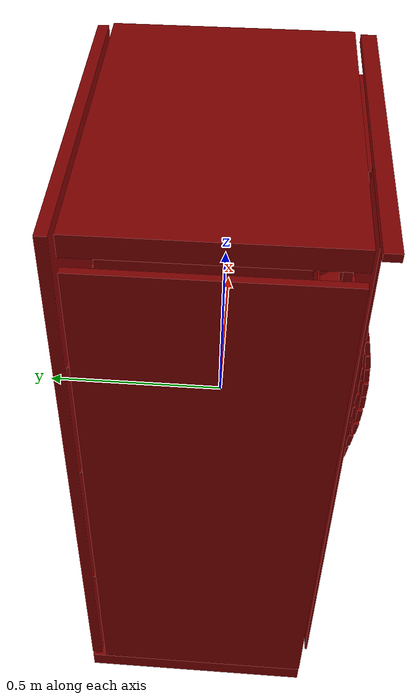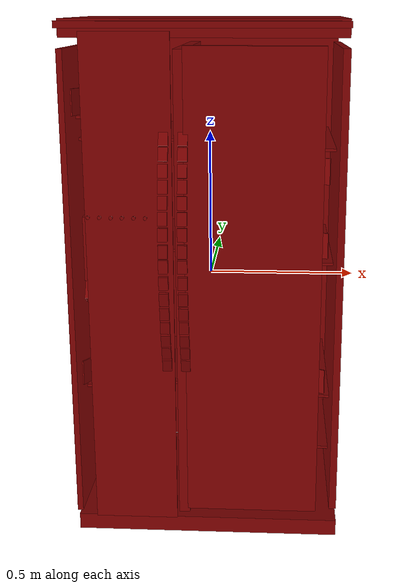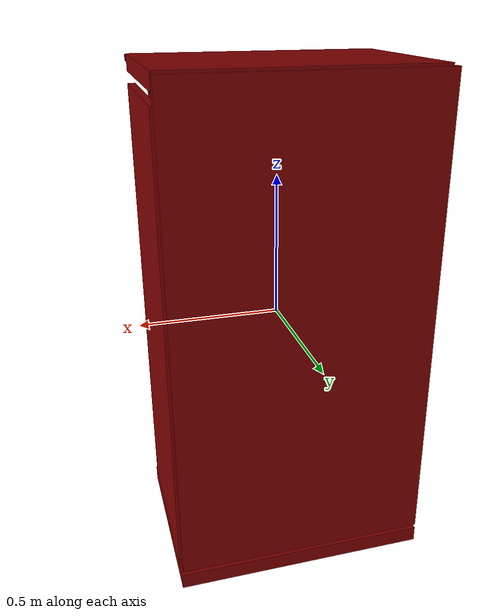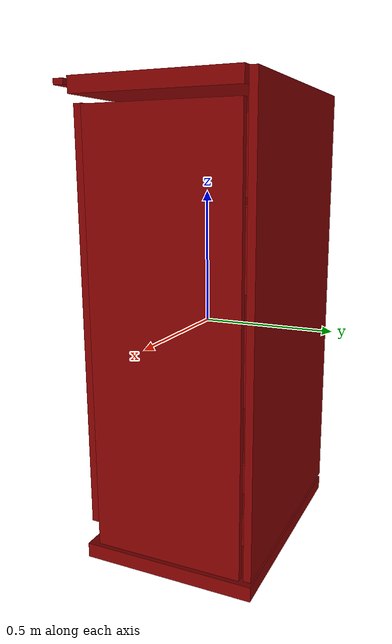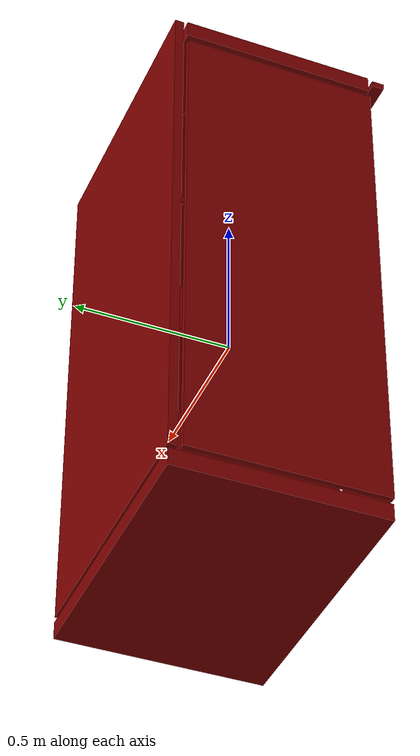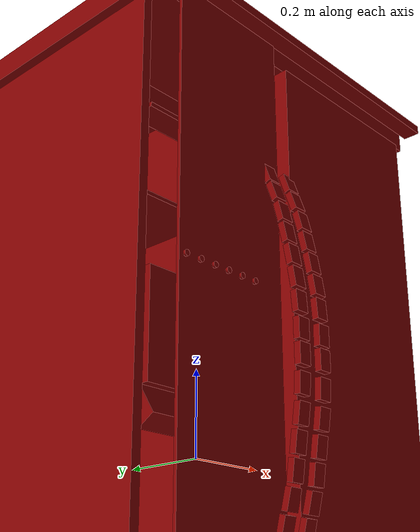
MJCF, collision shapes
<mujoco model="model">
  <compiler angle="radian"/>
  <asset>
    <mesh file="visuals/Body001.obj" name="Body001_vis"/>
    <mesh file="visuals/Body001_Clear.obj" name="Body001_Clear_vis"/>
    <mesh file="visuals/Button001.obj" name="Button001_vis"/>
    <mesh file="visuals/Button002.obj" name="Button002_vis"/>
    <mesh file="visuals/Button003.obj" name="Button003_vis"/>
    <mesh file="visuals/Button004.obj" name="Button004_vis"/>
    <mesh file="visuals/Button005.obj" name="Button005_vis"/>
    <mesh file="visuals/Button006.obj" name="Button006_vis"/>
    <mesh file="visuals/Door001.obj" name="Door001_vis"/>
    <mesh file="visuals/Door001_Clear.obj" name="Door001_Clear_vis"/>
    <mesh file="visuals/Door002.obj" name="Door002_vis"/>
    <mesh file="visuals/Door002_Clear.obj" name="Door002_Clear_vis"/>
    <mesh file="visuals/Drawer001.obj" name="Drawer001_vis"/>
    <mesh file="visuals/Drawer002.obj" name="Drawer002_vis"/>
    <texture file="visuals/T_BC001.png" name="Body001_material" type="2d"/>
    <material name="Body001_material" rgba="1 1 1 1.0" texture="Body001_material" shininess="0.4472135901451111" specular="0.8"/>
    <texture file="visuals/T_BC001.png" name="Body001_Clear_material" type="2d"/>
    <material name="Body001_Clear_material" rgba="1 1 1 0.10000000149011612" texture="Body001_Clear_material" shininess="0.4472135901451111" specular="0.8"/>
    <texture file="visuals/T_BC001.png" name="Door001_material" type="2d"/>
    <material name="Door001_material" rgba="1 1 1 1.0" texture="Door001_material" shininess="0.4472135901451111" specular="0.8"/>
    <texture file="visuals/T_BC001.png" name="Button001_material" type="2d"/>
    <material name="Button001_material" rgba="1 1 1 1.0" texture="Button001_material" shininess="0.4472135901451111" specular="0.8"/>
    <texture file="visuals/T_BC001.png" name="Button002_material" type="2d"/>
    <material name="Button002_material" rgba="1 1 1 1.0" texture="Button002_material" shininess="0.4472135901451111" specular="0.8"/>
    <texture file="visuals/T_BC001.png" name="Button003_material" type="2d"/>
    <material name="Button003_material" rgba="1 1 1 1.0" texture="Button003_material" shininess="0.4472135901451111" specular="0.8"/>
    <texture file="visuals/T_BC001.png" name="Button004_material" type="2d"/>
    <material name="Button004_material" rgba="1 1 1 1.0" texture="Button004_material" shininess="0.4472135901451111" specular="0.8"/>
    <texture file="visuals/T_BC001.png" name="Button005_material" type="2d"/>
    <material name="Button005_material" rgba="1 1 1 1.0" texture="Button005_material" shininess="0.4472135901451111" specular="0.8"/>
    <texture file="visuals/T_BC001.png" name="Button006_material" type="2d"/>
    <material name="Button006_material" rgba="1 1 1 1.0" texture="Button006_material" shininess="0.4472135901451111" specular="0.8"/>
    <texture file="visuals/T_BC001.png" name="Door001_Clear_material" type="2d"/>
    <material name="Door001_Clear_material" rgba="1 1 1 0.10000000149011612" texture="Door001_Clear_material" shininess="0.4472135901451111" specular="0.8"/>
    <texture file="visuals/T_BC001.png" name="Door002_material" type="2d"/>
    <material name="Door002_material" rgba="1 1 1 1.0" texture="Door002_material" shininess="0.4472135901451111" specular="0.8"/>
    <texture file="visuals/T_BC001.png" name="Door002_Clear_material" type="2d"/>
    <material name="Door002_Clear_material" rgba="1 1 1 0.10000000149011612" texture="Door002_Clear_material" shininess="0.4472135901451111" specular="0.8"/>
    <texture file="visuals/T_BC001.png" name="Drawer001_material" type="2d"/>
    <material name="Drawer001_material" rgba="1 1 1 1.0" texture="Drawer001_material" shininess="0.4472135901451111" specular="0.8"/>
    <texture file="visuals/T_BC001.png" name="Drawer002_material" type="2d"/>
    <material name="Drawer002_material" rgba="1 1 1 1.0" texture="Drawer002_material" shininess="0.4472135901451111" specular="0.8"/>
  </asset>
  <default>
    <default class="visual">
      <geom conaffinity="0" contype="0" group="1" type="mesh"/>
    </default>
    <default class="collision">
      <geom group="0" rgba="0.5 0 0 0.5"/>
    </default>
    <default class="spawn">
      <geom group="0" rgba="1 1 1 0.5" contype="0" conaffinity="0"/>
      <site group="0" rgba="1 1 1 0.5"/>
    </default>
    <default class="region">
      <geom group="1" conaffinity="0" contype="0" rgba="0 1 0 0"/>
    </default>
  </default>
  <worldbody>
    <body>
      <body name="object">
        <geom mesh="Body001_vis" type="mesh" solimp="0.998 0.998 0.001" solref="0.001 1" density="100" friction="0.95 0.3 0.1" class="visual" material="Body001_material"/>
        <geom class="collision" type="box" pos="0.000502 0.013715 0.850537" size="0.44800040125846863 0.31068915128707886 0.028410857543349266" quat="1.0 0.0 0.0 0.0"/>
        <geom class="collision" type="box" pos="-0.445311 0.013715 -0.005165" size="0.009599066339433193 0.310689240694046 0.7937540411949158" quat="1.0 0.0 0.0 0.0"/>
        <geom class="collision" type="box" pos="0.000502 0.351787 0.036774" size="0.44800040125846863 0.014299582690000534 0.8356931805610657" quat="1.0 0.0 0.0 0.0"/>
        <geom class="collision" type="box" pos="0.001952 0.034234 -0.842715" size="0.4502994418144226 0.3312082588672638 0.028066061437129974" quat="1.0 0.0 0.0 0.0"/>
        <geom class="collision" type="box" pos="0.442520 0.040745 -0.005165" size="0.01248040609061718 0.2836594581604004 0.7937540411949158" quat="1.0 0.0 0.0 0.0"/>
        <geom class="collision" type="box" pos="-0.076691 0.017630 -0.005165" size="0.01868603192269802 0.30677443742752075 0.7937540411949158" quat="1.0 0.0 0.0 0.0"/>
        <geom class="collision" type="box" pos="0.000502 -0.332219 0.862164" size="0.44800040125846863 0.01981038600206375 0.010303191840648651" quat="1.0 0.0 0.0 0.0"/>
        <body name="Body001_Clear">
          <geom mesh="Body001_Clear_vis" type="mesh" solimp="0.998 0.998 0.001" solref="0.001 1" density="100" friction="0.95 0.3 0.1" class="visual" material="Body001_Clear_material"/>
          <geom class="collision" type="box" pos="0.185762 0.059200 -0.377109" size="0.23391325771808624 0.2834528386592865 0.004587478470057249" quat="1.0 0.0 0.0 0.0"/>
          <geom class="collision" type="box" pos="0.185762 0.059200 -0.570086" size="0.23391325771808624 0.2834528386592865 0.004587497562170029" quat="1.0 0.0 0.0 0.0"/>
          <geom class="collision" type="box" pos="-0.255566 0.105609 0.488321" size="0.17424075305461884 0.23704399168491364 0.004587478470057249" quat="1.0 0.0 0.0 0.0"/>
          <geom class="collision" type="box" pos="-0.255566 0.105609 0.110322" size="0.17424075305461884 0.23704399168491364 0.004587497562170029" quat="1.0 0.0 0.0 0.0"/>
          <geom class="collision" type="box" pos="-0.255566 0.107759 -0.378989" size="0.17424075305461884 0.23489367961883545 0.004587478470057249" quat="1.0 0.0 0.0 0.0"/>
          <geom class="collision" type="box" pos="0.185762 0.056311 0.472643" size="0.23391325771808624 0.286342054605484 0.004587478470057249" quat="1.0 0.0 0.0 0.0"/>
          <geom class="collision" type="box" pos="0.185762 0.056311 0.095022" size="0.23391325771808624 0.286342054605484 0.004587478470057249" quat="1.0 0.0 0.0 0.0"/>
        </body>
        <body name="Door001">
          <joint axis="0.0 0.0 -1.0" pos="-0.433079 -0.312615 0.141476" limited="true" name="Door001_joint" range="0.0 1.5707963267948966" type="hinge" damping="1" frictionloss="1" armature=".01" stiffness="0.05"/>
          <geom mesh="Door001_vis" type="mesh" solimp="0.998 0.998 0.001" solref="0.001 1" density="100" friction="0.95 0.3 0.1" class="visual" material="Door001_material"/>
          <geom class="collision" type="box" pos="-0.273921 -0.232126 0.146294" size="0.1261339783668518 0.039346158504486084 0.10778778046369553" quat="1.0 0.0 0.0 0.0"/>
          <geom class="collision" type="box" pos="-0.239680 -0.319809 0.019687" size="0.14074762165546417 0.0033345655538141727 0.8226894736289978" quat="1.0 0.0 0.0 0.0"/>
          <geom class="collision" type="box" pos="-0.123924 -0.324863 -0.231913" size="0.015232296660542488 0.006920435465872288 0.02163306623697281" quat="0.9920744895935059 0.12565097212791443 0.0 0.0"/>
          <geom class="collision" type="box" pos="-0.123924 -0.339172 -0.183623" size="0.015232296660542488 0.006920435465872288 0.02163306623697281" quat="0.9920744895935059 0.12565097212791443 0.0 0.0"/>
          <geom class="collision" type="box" pos="-0.123924 -0.353735 -0.136099" size="0.015232296660542488 0.006920435465872288 0.02163306623697281" quat="0.9920744895935059 0.12565097212791443 0.0 0.0"/>
          <geom class="collision" type="box" pos="-0.123924 -0.365233 -0.086915" size="0.015232296660542488 0.006920435465872288 0.02163306623697281" quat="0.9975057244300842 0.07058577239513397 0.0 0.0"/>
          <geom class="collision" type="box" pos="-0.123924 -0.373750 -0.037092" size="0.015232296660542488 0.006920435465872288 0.02163306623697281" quat="0.9975057244300842 0.07058577239513397 0.0 0.0"/>
          <geom class="collision" type="box" pos="-0.123924 -0.382267 0.013796" size="0.015232296660542488 0.006920435465872288 0.02163306623697281" quat="0.9975057244300842 0.07058577239513397 0.0 0.0"/>
          <geom class="collision" type="box" pos="-0.123924 -0.386738 0.068730" size="0.015232296660542488 0.006920434534549713 0.02163306623697281" quat="0.999504566192627 0.03147508203983307 0.0 0.0"/>
          <geom class="collision" type="box" pos="-0.123924 -0.389506 0.124089" size="0.015232296660542488 0.007034887094050646 0.021669097244739532" quat="1.0 0.0 0.0 0.0"/>
          <geom class="collision" type="box" pos="-0.123924 -0.389080 0.173060" size="0.015232296660542488 0.007034905254840851 0.021669169887900352" quat="1.0 0.0 0.0 0.0"/>
          <geom class="collision" type="box" pos="-0.123924 -0.386419 0.226734" size="0.015232296660542488 0.006920435465872288 0.02163306623697281" quat="0.9993606805801392 -0.0357518270611763 -0.0 0.0"/>
          <geom class="collision" type="box" pos="-0.123924 -0.382373 0.276344" size="0.015232296660542488 0.006920435465872288 0.02163306623697281" quat="0.9970585703849792 -0.07664324343204498 -0.0 0.0"/>
          <geom class="collision" type="box" pos="-0.123924 -0.374282 0.325316" size="0.015232296660542488 0.006920435465872288 0.02163306623697281" quat="0.9961068034172058 -0.08815453946590424 -0.0 0.0"/>
          <geom class="collision" type="box" pos="-0.123924 -0.364062 0.374372" size="0.015232296660542488 0.006920434534549713 0.02163306623697281" quat="0.9945374131202698 -0.10438086837530136 -0.0 0.0"/>
          <geom class="collision" type="box" pos="-0.123924 -0.354097 0.422151" size="0.015232296660542488 0.006920435465872288 0.02163306623697281" quat="0.9921504855155945 -0.12504985928535461 -0.0 0.0"/>
          <geom class="collision" type="box" pos="-0.123924 -0.339090 0.471549" size="0.015232296660542488 0.006920434534549713 0.02163306623697281" quat="0.9860491752624512 -0.16645437479019165 -0.0 0.0"/>
          <geom class="collision" type="box" pos="-0.123924 -0.323285 0.517028" size="0.015232296660542488 0.006920434534549713 0.02163306623697281" quat="0.9860491752624512 -0.16645437479019165 -0.0 0.0"/>
          <geom class="collision" type="box" pos="-0.273921 -0.247035 0.006434" size="0.1261339783668518 0.021196728572249413 0.040684595704078674" quat="0.9596711993217468 -0.28112488985061646 6.242226510147307e-17 1.817213670379881e-24"/>
          <body name="Button001">
            <joint axis="0.0 1.0 0.0" pos="-0.408712 -0.288247 0.141476" limited="true" name="Button001_joint" range="0.0 0.002" type="slide" damping="1" frictionloss="1" armature=".01" stiffness="0.05"/>
            <geom mesh="Button001_vis" type="mesh" solimp="0.998 0.998 0.001" solref="0.001 1" density="100" friction="0.95 0.3 0.1" class="visual" material="Button001_material"/>
            <geom class="collision" type="cylinder" pos="-0.369257 -0.330408 0.266233" size="0.006131454836577177 0.0025956109166145325" quat="0.7071068286895752 -0.7071067690849304 -0.0 0.0"/>
          </body>
          <body name="Button002">
            <joint axis="0.0 1.0 0.0" pos="-0.408712 -0.288247 0.141476" limited="true" name="Button002_joint" range="0.0 0.002" type="slide" damping="1" frictionloss="1" armature=".01" stiffness="0.05"/>
            <geom mesh="Button002_vis" type="mesh" solimp="0.998 0.998 0.001" solref="0.001 1" density="100" friction="0.95 0.3 0.1" class="visual" material="Button002_material"/>
            <geom class="collision" type="cylinder" pos="-0.332350 -0.330408 0.266233" size="0.006131454836577177 0.0025956109166145325" quat="0.7071068286895752 -0.7071067690849304 -0.0 0.0"/>
          </body>
          <body name="Button003">
            <joint axis="0.0 1.0 0.0" pos="-0.408712 -0.288247 0.141476" limited="true" name="Button003_joint" range="0.0 0.002" type="slide" damping="1" frictionloss="1" armature=".01" stiffness="0.05"/>
            <geom mesh="Button003_vis" type="mesh" solimp="0.998 0.998 0.001" solref="0.001 1" density="100" friction="0.95 0.3 0.1" class="visual" material="Button003_material"/>
            <geom class="collision" type="cylinder" pos="-0.295628 -0.330930 0.266233" size="0.006131454836577177 0.0025956109166145325" quat="0.7071068286895752 -0.7071067690849304 -0.0 0.0"/>
          </body>
          <body name="Button004">
            <joint axis="0.0 1.0 0.0" pos="-0.408712 -0.288247 0.141476" limited="true" name="Button004_joint" range="0.0 0.002" type="slide" damping="1" frictionloss="1" armature=".01" stiffness="0.05"/>
            <geom mesh="Button004_vis" type="mesh" solimp="0.998 0.998 0.001" solref="0.001 1" density="100" friction="0.95 0.3 0.1" class="visual" material="Button004_material"/>
            <geom class="collision" type="cylinder" pos="-0.259486 -0.330930 0.266233" size="0.006131454836577177 0.0025956109166145325" quat="0.7071068286895752 -0.7071067690849304 -0.0 0.0"/>
          </body>
          <body name="Button005">
            <joint axis="0.0 1.0 0.0" pos="-0.408712 -0.288247 0.141476" limited="true" name="Button005_joint" range="0.0 0.002" type="slide" damping="1" frictionloss="1" armature=".01" stiffness="0.05"/>
            <geom mesh="Button005_vis" type="mesh" solimp="0.998 0.998 0.001" solref="0.001 1" density="100" friction="0.95 0.3 0.1" class="visual" material="Button005_material"/>
            <geom class="collision" type="cylinder" pos="-0.222471 -0.331381 0.266233" size="0.006131454836577177 0.0025956109166145325" quat="0.7071068286895752 -0.7071067690849304 -0.0 0.0"/>
          </body>
          <body name="Button006">
            <joint axis="0.0 1.0 0.0" pos="-0.408712 -0.288247 0.141476" limited="true" name="Button006_joint" range="0.0 0.002" type="slide" damping="1" frictionloss="1" armature=".01" stiffness="0.05"/>
            <geom mesh="Button006_vis" type="mesh" solimp="0.998 0.998 0.001" solref="0.001 1" density="100" friction="0.95 0.3 0.1" class="visual" material="Button006_material"/>
            <geom class="collision" type="cylinder" pos="-0.185637 -0.331381 0.266233" size="0.006131454836577177 0.0025956109166145325" quat="0.7071068286895752 -0.7071067690849304 -0.0 0.0"/>
          </body>
          <body name="Door001_Clear">
            <geom mesh="Door001_Clear_vis" type="mesh" solimp="0.998 0.998 0.001" solref="0.001 1" density="100" friction="0.95 0.3 0.1" class="visual" material="Door001_Clear_material"/>
            <geom class="collision" type="box" pos="-0.282574 -0.213238 0.623133" size="0.10331191122531891 0.0024915917310863733 0.04236834496259689" quat="1.0 0.0 0.0 0.0"/>
            <geom class="collision" type="box" pos="-0.157737 -0.239395 0.623133" size="0.03484678640961647 0.0024915917310863733 0.04236834496259689" quat="0.8852932453155518 0.0 -0.0 -0.4650331437587738"/>
            <geom class="collision" type="box" pos="-0.402215 -0.240145 0.623133" size="0.03484678640961647 0.002491591963917017 0.04236834496259689" quat="0.8684726357460022 0.0 0.0 0.49573707580566406"/>
            <geom class="collision" type="box" pos="-0.279660 -0.243396 0.577383" size="0.12704499065876007 0.027977311983704567 0.004774631932377815" quat="1.0 0.0 0.0 0.0"/>
            <geom class="collision" type="box" pos="-0.282574 -0.213238 -0.290219" size="0.10331191122531891 0.0024915917310863733 0.04236834496259689" quat="1.0 0.0 0.0 0.0"/>
            <geom class="collision" type="box" pos="-0.157737 -0.239395 -0.290219" size="0.03484678640961647 0.0024915917310863733 0.04236834496259689" quat="0.8852932453155518 0.0 -0.0 -0.4650331437587738"/>
            <geom class="collision" type="box" pos="-0.402215 -0.240145 -0.290219" size="0.03484678640961647 0.002491591963917017 0.04236834496259689" quat="0.8684726357460022 0.0 0.0 0.49573707580566406"/>
            <geom class="collision" type="box" pos="-0.279660 -0.243396 -0.335969" size="0.12704499065876007 0.027977311983704567 0.004774631932377815" quat="1.0 0.0 0.0 0.0"/>
          </body>
        </body>
        <body name="Door002">
          <joint axis="0.0 0.0 1.0" pos="0.431711 -0.316815 -0.032579" limited="true" name="Door002_joint" range="0.0 1.5707963267948966" type="hinge" damping="1" frictionloss="1" armature=".01" stiffness="0.05"/>
          <geom mesh="Door002_vis" type="mesh" solimp="0.998 0.998 0.001" solref="0.001 1" density="100" friction="0.95 0.3 0.1" class="visual" material="Door002_material"/>
          <geom class="collision" type="box" pos="-0.062497 -0.323285 0.517028" size="0.015232296660542488 0.006920434534549713 0.02163306623697281" quat="0.9860491752624512 -0.16645437479019165 -0.0 0.0"/>
          <geom class="collision" type="box" pos="-0.062497 -0.339090 0.471549" size="0.015232296660542488 0.006920434534549713 0.02163306623697281" quat="0.9860491752624512 -0.16645437479019165 -0.0 0.0"/>
          <geom class="collision" type="box" pos="-0.062497 -0.354097 0.422151" size="0.015232296660542488 0.006920435465872288 0.02163306623697281" quat="0.9921504855155945 -0.12504985928535461 -0.0 0.0"/>
          <geom class="collision" type="box" pos="-0.062497 -0.364062 0.374372" size="0.015232296660542488 0.006920434534549713 0.02163306623697281" quat="0.9945374131202698 -0.10438086837530136 -0.0 0.0"/>
          <geom class="collision" type="box" pos="-0.062497 -0.374282 0.325316" size="0.015232296660542488 0.006920435465872288 0.02163306623697281" quat="0.9961068034172058 -0.08815453946590424 -0.0 0.0"/>
          <geom class="collision" type="box" pos="-0.062497 -0.382373 0.276344" size="0.015232296660542488 0.006920435465872288 0.02163306623697281" quat="0.9970585703849792 -0.07664324343204498 -0.0 0.0"/>
          <geom class="collision" type="box" pos="-0.062497 -0.386419 0.226734" size="0.015232296660542488 0.006920435465872288 0.02163306623697281" quat="0.9993606805801392 -0.0357518270611763 -0.0 0.0"/>
          <geom class="collision" type="box" pos="-0.062497 -0.389080 0.173060" size="0.015232296660542488 0.007034923415631056 0.021669242531061172" quat="1.0 0.0 0.0 0.0"/>
          <geom class="collision" type="box" pos="-0.062497 -0.389506 0.124089" size="0.015232296660542488 0.007034942042082548 0.021669315174221992" quat="1.0 0.0 0.0 0.0"/>
          <geom class="collision" type="box" pos="-0.062497 -0.386738 0.068730" size="0.015232296660542488 0.006920434534549713 0.02163306623697281" quat="0.999504566192627 0.03147508203983307 0.0 0.0"/>
          <geom class="collision" type="box" pos="-0.062497 -0.382267 0.013796" size="0.015232296660542488 0.006920435465872288 0.02163306623697281" quat="0.9975057244300842 0.07058577239513397 0.0 0.0"/>
          <geom class="collision" type="box" pos="-0.062497 -0.373750 -0.037092" size="0.015232296660542488 0.006920435465872288 0.02163306623697281" quat="0.9975057244300842 0.07058577239513397 0.0 0.0"/>
          <geom class="collision" type="box" pos="-0.062497 -0.365233 -0.086915" size="0.015232296660542488 0.006920435465872288 0.02163306623697281" quat="0.9975057244300842 0.07058577239513397 0.0 0.0"/>
          <geom class="collision" type="box" pos="-0.062497 -0.353735 -0.136099" size="0.015232296660542488 0.006920435465872288 0.02163306623697281" quat="0.9920744895935059 0.12565097212791443 0.0 0.0"/>
          <geom class="collision" type="box" pos="-0.062497 -0.339172 -0.183623" size="0.015232296660542488 0.006920435465872288 0.02163306623697281" quat="0.9920744895935059 0.12565097212791443 0.0 0.0"/>
          <geom class="collision" type="box" pos="-0.062497 -0.324863 -0.231913" size="0.015232296660542488 0.006920435465872288 0.02163306623697281" quat="0.9920744895935059 0.12565097212791443 0.0 0.0"/>
          <geom class="collision" type="box" pos="0.158558 -0.307578 0.018079" size="0.22027823328971863 0.018054431304335594 0.7817465662956238" quat="1.0 0.0 0.0 0.0"/>
          <body name="Door002_Clear">
            <geom mesh="Door002_Clear_vis" type="mesh" solimp="0.998 0.998 0.001" solref="0.001 1" density="100" friction="0.95 0.3 0.1" class="visual" material="Door002_Clear_material"/>
            <geom class="collision" type="box" pos="0.175011 -0.226350 -0.312056" size="0.1655995100736618 0.0024915917310863733 0.04236834496259689" quat="1.0 0.0 0.0 0.0"/>
            <geom class="collision" type="box" pos="0.368759 -0.239249 -0.312056" size="0.03484678640961647 0.0024915917310863733 0.04236834496259689" quat="0.9744662046432495 0.0 -0.0 -0.22453421354293823"/>
            <geom class="collision" type="box" pos="-0.024031 -0.244880 -0.312056" size="0.03484678640961647 0.0024915917310863733 0.04236834496259689" quat="0.9524669051170349 0.0 0.0 0.30464211106300354"/>
            <geom class="collision" type="box" pos="0.175011 -0.236840 -0.357806" size="0.20364147424697876 0.015007716603577137 0.004774631932377815" quat="1.0 0.0 0.0 0.0"/>
            <geom class="collision" type="box" pos="0.175011 -0.226350 0.163001" size="0.1655995100736618 0.0024915917310863733 0.04236834496259689" quat="1.0 0.0 0.0 0.0"/>
            <geom class="collision" type="box" pos="0.368759 -0.239249 0.163001" size="0.03484678640961647 0.0024915917310863733 0.04236834496259689" quat="0.9744662046432495 0.0 -0.0 -0.22453421354293823"/>
            <geom class="collision" type="box" pos="-0.024031 -0.244880 0.163001" size="0.03484678640961647 0.0024915917310863733 0.04236834496259689" quat="0.9524669051170349 0.0 0.0 0.30464211106300354"/>
            <geom class="collision" type="box" pos="0.175011 -0.236840 0.117251" size="0.20364147424697876 0.015007716603577137 0.004774631932377815" quat="1.0 0.0 0.0 0.0"/>
            <geom class="collision" type="box" pos="0.175011 -0.226350 0.407431" size="0.1655995100736618 0.0024915917310863733 0.04236834496259689" quat="1.0 0.0 0.0 0.0"/>
            <geom class="collision" type="box" pos="0.368759 -0.239249 0.407431" size="0.03484678640961647 0.0024915917310863733 0.04236834496259689" quat="0.9744662046432495 0.0 -0.0 -0.22453421354293823"/>
            <geom class="collision" type="box" pos="-0.024031 -0.244880 0.407431" size="0.03484678640961647 0.0024915917310863733 0.04236834496259689" quat="0.9524669051170349 0.0 0.0 0.30464211106300354"/>
            <geom class="collision" type="box" pos="0.175011 -0.236840 0.361681" size="0.20364147424697876 0.015007716603577137 0.004774631932377815" quat="1.0 0.0 0.0 0.0"/>
          </body>
        </body>
        <body name="Drawer001">
          <joint axis="0.0 -1.0 0.0" pos="0.184320 -0.006545 -0.450612" limited="true" name="Drawer001_joint" range="0.0 0.4" type="slide" damping="1" frictionloss="1" armature=".01" stiffness="0.05"/>
          <geom mesh="Drawer001_vis" type="mesh" solimp="0.998 0.998 0.001" solref="0.001 1" density="100" friction="0.95 0.3 0.1" class="visual" material="Drawer001_material"/>
          <geom class="collision" type="box" pos="0.127212 0.047793 -0.552458" size="0.16899418830871582 0.25132739543914795 0.005459532607346773" quat="1.0 0.0 0.0 0.0"/>
          <geom class="collision" type="box" pos="-0.038125 0.047793 -0.474480" size="0.003519356483593583 0.25132739543914795 0.08169250935316086" quat="1.0 0.0 0.0 0.0"/>
          <geom class="collision" type="box" pos="0.292687 0.047793 -0.474480" size="0.003519356483593583 0.25132739543914795 0.08169250935316086" quat="1.0 0.0 0.0 0.0"/>
          <geom class="collision" type="box" pos="0.128048 0.299806 -0.474480" size="0.16969221830368042 0.003921613562852144 0.08169250935316086" quat="1.0 0.0 0.0 0.0"/>
          <geom class="collision" type="box" pos="0.128048 -0.206086 -0.474480" size="0.16969221830368042 0.003921613562852144 0.08169250935316086" quat="1.0 0.0 0.0 0.0"/>
          <geom class="collision" type="box" pos="0.070019 -0.220016 -0.423860" size="0.001758756348863244 0.010442287661135197 0.02150658518075943" quat="1.0 0.0 0.0 0.0"/>
          <geom class="collision" type="box" pos="0.184934 -0.220016 -0.423860" size="0.001758756348863244 0.010442287661135197 0.02150658518075943" quat="1.0 0.0 0.0 0.0"/>
          <geom class="collision" type="box" pos="0.129501 -0.220016 -0.406350" size="0.05772343650460243 0.010442288592457771 0.001035698689520359" quat="0.9766175746917725 0.21498394012451172 -4.773602405017379e-17 -7.192791825569596e-25"/>
          <geom class="collision" type="box" pos="0.129501 -0.229825 -0.426484" size="0.05772343650460243 0.0006382691790349782 0.018404146656394005" quat="1.0 0.0 0.0 0.0"/>
        </body>
        <body name="Drawer002">
          <joint axis="0.0 -1.0 0.0" pos="0.184320 -0.006545 -0.661636" limited="true" name="Drawer002_joint" range="0.0 0.4" type="slide" damping="1" frictionloss="1" armature=".01" stiffness="0.05"/>
          <geom mesh="Drawer002_vis" type="mesh" solimp="0.998 0.998 0.001" solref="0.001 1" density="100" friction="0.95 0.3 0.1" class="visual" material="Drawer002_material"/>
          <geom class="collision" type="box" pos="0.127212 0.047793 -0.762502" size="0.16899418830871582 0.25132739543914795 0.005459532607346773" quat="1.0 0.0 0.0 0.0"/>
          <geom class="collision" type="box" pos="-0.038125 0.047793 -0.684523" size="0.003519356483593583 0.25132739543914795 0.08169250935316086" quat="1.0 0.0 0.0 0.0"/>
          <geom class="collision" type="box" pos="0.292687 0.047793 -0.684523" size="0.003519356483593583 0.25132739543914795 0.08169250935316086" quat="1.0 0.0 0.0 0.0"/>
          <geom class="collision" type="box" pos="0.128048 0.299806 -0.684523" size="0.16969221830368042 0.003921613562852144 0.08169250935316086" quat="1.0 0.0 0.0 0.0"/>
          <geom class="collision" type="box" pos="0.128048 -0.206086 -0.684523" size="0.16969221830368042 0.003921613562852144 0.08169250935316086" quat="1.0 0.0 0.0 0.0"/>
          <geom class="collision" type="box" pos="0.070019 -0.220016 -0.633903" size="0.001758756348863244 0.010442287661135197 0.02150658518075943" quat="1.0 0.0 0.0 0.0"/>
          <geom class="collision" type="box" pos="0.184934 -0.220016 -0.633903" size="0.001758756348863244 0.010442287661135197 0.02150658518075943" quat="1.0 0.0 0.0 0.0"/>
          <geom class="collision" type="box" pos="0.129501 -0.220016 -0.616394" size="0.05772343650460243 0.010442288592457771 0.001035698689520359" quat="0.9766175746917725 0.21498394012451172 -4.773602405017379e-17 -7.192791825569596e-25"/>
          <geom class="collision" type="box" pos="0.129501 -0.229825 -0.636527" size="0.05772343650460243 0.0006382691790349782 0.018404146656394005" quat="1.0 0.0 0.0 0.0"/>
        </body>
        <geom class="region" name="reg_main" type="box" pos="0.0 0.0346515 0.0" size="0.455 0.3638925 0.88"/>
      </body>
    </body>
  </worldbody>
  <actuator>
    <motor name="Door001_joint_actuator" joint="Door001_joint" gear="50"/>
    <motor name="Door002_joint_actuator" joint="Door002_joint" gear="50"/>
    <motor name="Drawer001_joint_actuator" joint="Drawer001_joint" gear="50"/>
    <motor name="Drawer002_joint_actuator" joint="Drawer002_joint" gear="50"/>
    <motor name="Button001_joint_actuator" joint="Button001_joint" gear="0.5"/>
    <motor name="Button002_joint_actuator" joint="Button002_joint" gear="0.5"/>
    <motor name="Button003_joint_actuator" joint="Button003_joint" gear="0.5"/>
    <motor name="Button004_joint_actuator" joint="Button004_joint" gear="0.5"/>
    <motor name="Button005_joint_actuator" joint="Button005_joint" gear="0.5"/>
    <motor name="Button006_joint_actuator" joint="Button006_joint" gear="0.5"/>
  </actuator>
</mujoco>
